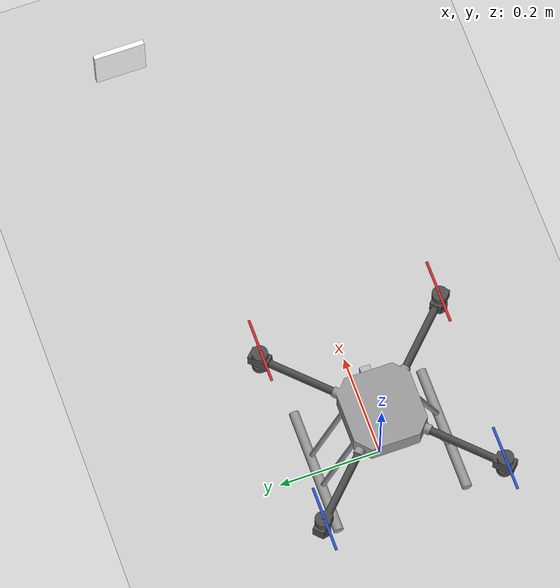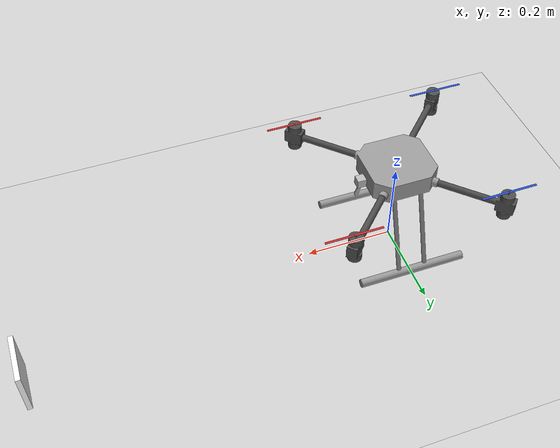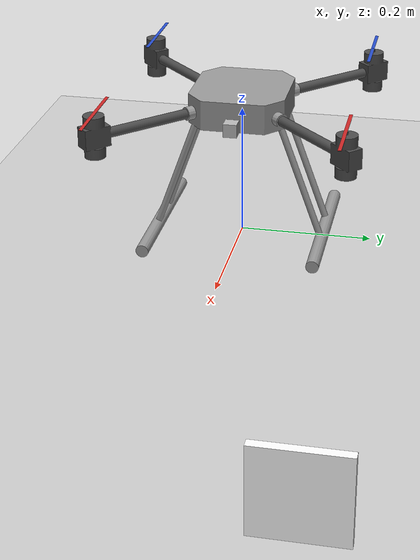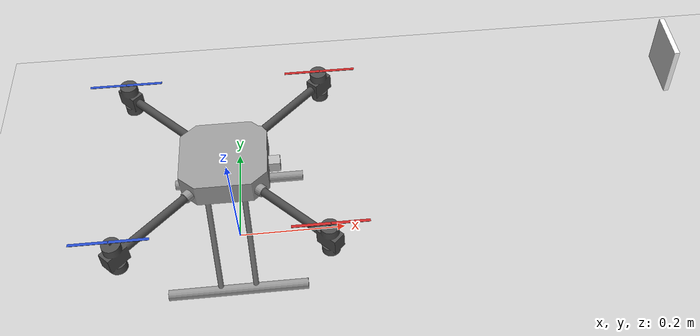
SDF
<sdf version="1.7">
 <world name="default">
  <light name="sun" type="directional">
   <pose>0 0 10 0 -0 0</pose>
   <diffuse>0.8 0.8 0.8 1</diffuse>
   <specular>0.2 0.2 0.2 1</specular>
   <attenuation>
    <range>1000</range>
    <constant>0.9</constant>
    <linear>0.01</linear>
    <quadratic>0.001</quadratic>
   </attenuation>
   <direction>-0.5 0.1 -0.9</direction>
   <spot><inner_angle>0</inner_angle><outer_angle>0</outer_angle><falloff>0</falloff></spot>
  </light>
  <model name="ground_plane">
   <static>1</static>
   <link name="link">
    <collision name="collision">
     <geometry><plane><normal>0 0 1</normal><size>100 100</size></plane></geometry>
     <surface>
      <contact><collide_bitmask>65535</collide_bitmask></contact>
      <friction><ode><mu>100</mu><mu2>50</mu2></ode></friction>
     </surface>
    </collision>
    <visual name="visual">
     <cast_shadows>0</cast_shadows>
     <geometry><plane><normal>0 0 1</normal><size>100 100</size></plane></geometry>
     <material>
      <script><uri>file://media/materials/scripts/gazebo.material</uri><name>Gazebo/Grey</name></script>
     </material>
    </visual>
   </link>
  </model>
  <gravity>0 0 -9.8</gravity>
  <magnetic_field>6e-06 2.3e-05 -4.2e-05</magnetic_field>
  <atmosphere type="adiabatic"/>
  <physics type="ode">
   <max_step_size>0.001</max_step_size>
   <real_time_factor>1</real_time_factor>
   <real_time_update_rate>1000</real_time_update_rate>
  </physics>
  <scene><ambient>0.4 0.4 0.4 1</ambient><background>0.7 0.7 0.7 1</background><shadows>1</shadows></scene>
  <spherical_coordinates>
   <surface_model>EARTH_WGS84</surface_model>
   <latitude_deg>0</latitude_deg>
   <longitude_deg>0</longitude_deg>
   <elevation>0</elevation>
   <heading_deg>0</heading_deg>
  </spherical_coordinates>
  <model name="ndt2">
   <link name="base_link">
    <inertial>
     <pose>0.00017 0 2e-05 0 -0 0</pose>
     <mass>5.01</mass>
     <inertia>
      <ixx>0.153203</ixx>
      <ixy>0</ixy>
      <ixz>-8.48303e-06</ixz>
      <iyy>0.153275</iyy>
      <iyz>0</iyz>
      <izz>0.186082</izz>
     </inertia>
    </inertial>
    <collision name="base_link_inertia_collision">
     <geometry>
      <mesh>
       <scale>1 1 1</scale>
       <uri>/home/simone/uav_ws/src/mav_description/meshes/ndt2/chassis_res.stl</uri>
      </mesh>
     </geometry>
     <surface><contact><ode><min_depth>0.001</min_depth><max_vel>0</max_vel></ode></contact></surface>
    </collision>
    <visual name="base_link_inertia_visual">
     <geometry>
      <mesh>
       <scale>1 1 1</scale>
       <uri>/home/simone/uav_ws/src/mav_description/meshes/ndt2/chassis_res.stl</uri>
      </mesh>
     </geometry>
     <material>
      <script><name>Gazebo/Gray</name><uri>file://media/materials/scripts/gazebo.material</uri></script>
     </material>
    </visual>
    <visual name="base_link_fixed_joint_lump__camera_link_visual_1">
     <pose>0.085 0 0.01 0 -0 0</pose>
     <geometry><box><size>0.02 0.02 0.02</size></box></geometry>
    </visual>
    <self_collide>1</self_collide>
    <sensor name="camera1" type="camera">
     <update_rate>30</update_rate>
     <camera name="head">
      <horizontal_fov>1.39626</horizontal_fov>
      <image><width>800</width><height>600</height><format>R8G8B8</format></image>
      <clip><near>0.02</near><far>300</far></clip>
      <noise><type>gaussian</type><mean>0</mean><stddev>0.007</stddev></noise>
     </camera>
     <plugin name="camera_controller" filename="libgazebo_ros_camera.so">
      <alwaysOn>1</alwaysOn>
      <updateRate>0.0</updateRate>
      <cameraName>/camera</cameraName>
      <imageTopicName>image_raw</imageTopicName>
      <cameraInfoTopicName>camera_info</cameraInfoTopicName>
      <frameName>camera_link</frameName>
      <hackBaseline>0.07</hackBaseline>
      <distortionK1>0.0</distortionK1>
      <distortionK2>0.0</distortionK2>
      <distortionK3>0.0</distortionK3>
      <distortionT1>0.0</distortionT1>
      <distortionT2>0.0</distortionT2>
      <robotNamespace>/</robotNamespace>
     </plugin>
     <pose>0.085 0 0.01 0 -0 0</pose>
    </sensor>
   </link>
   <joint name="tilt_motor_1" type="revolute">
    <pose relative_to="base_link">0 0 0.02 0 -0 3.1415</pose>
    <parent>base_link</parent>
    <child>arm_1</child>
    <axis>
     <xyz>-0.707107 -0.707107 0</xyz>
     <limit><lower>-1.57</lower><upper>1.57</upper><effort>30</effort><velocity>1</velocity></limit>
     <dynamics><spring_reference>0</spring_reference><spring_stiffness>0</spring_stiffness></dynamics>
    </axis>
   </joint>
   <link name="arm_1">
    <pose relative_to="tilt_motor_1">0 0 0 0 -0 0</pose>
    <inertial>
     <pose>0.083 0.083 0 0 -0 0</pose>
     <mass>0.1</mass>
     <inertia>
      <ixx>0.000993333</ixx>
      <ixy>0</ixy>
      <ixz>0</ixz>
      <iyy>0.000993333</iyy>
      <iyz>0</iyz>
      <izz>0.00192667</izz>
     </inertia>
    </inertial>
    <collision name="arm_1_collision">
     <pose>0 0 -0.02 0 -0 3.1415</pose>
     <geometry>
      <mesh><scale>1 1 1</scale><uri>/home/simone/uav_ws/src/mav_description/meshes/ndt2/arm_1.stl</uri></mesh>
     </geometry>
     <surface><friction><ode><mu>0.2</mu><mu2>0.2</mu2></ode></friction></surface>
    </collision>
    <visual name="arm_1_visual">
     <pose>0 0 -0.02 0 -0 3.1415</pose>
     <geometry>
      <mesh><scale>1 1 1</scale><uri>/home/simone/uav_ws/src/mav_description/meshes/ndt2/arm_1.stl</uri></mesh>
     </geometry>
     <material>
      <script><name>DarkGrey</name><uri>file://media/materials/scripts/gazebo.material</uri></script>
     </material>
    </visual>
    <self_collide>1</self_collide>
   </link>
   <joint name="rotor_2_joint" type="revolute">
    <pose relative_to="arm_1">-0.175 -0.175 0.035 0 -0 0</pose>
    <parent>arm_1</parent>
    <child>rotor_2</child>
    <axis>
     <xyz>0 0 1</xyz>
     <limit><lower>-1e+16</lower><upper>1e+16</upper></limit>
     <dynamics><spring_reference>0</spring_reference><spring_stiffness>0</spring_stiffness></dynamics>
    </axis>
   </joint>
   <link name="rotor_2">
    <pose relative_to="rotor_2_joint">0 0 0 0 -0 0</pose>
    <inertial>
     <mass>0.001</mass>
     <inertia>
      <ixx>1.95e-06</ixx>
      <ixy>0</ixy>
      <ixz>0</ixz>
      <iyy>0.000546208</iyy>
      <iyz>0</iyz>
      <izz>0.000548008</izz>
     </inertia>
    </inertial>
    <collision name="rotor_2_collision">
     <geometry><cylinder><length>0.005</length><radius>0.128</radius></cylinder></geometry>
    </collision>
    <visual name="rotor_2_visual">
     <geometry>
      <mesh>
       <scale>1 1 1</scale>
       <uri>/home/simone/uav_ws/src/mav_description/meshes/ndt2/prop.stl_cw.dae</uri>
      </mesh>
     </geometry>
     <material>
      <script><name>Gazebo/Red</name><uri>file://media/materials/scripts/gazebo.material</uri></script>
     </material>
    </visual>
   </link>
   <joint name="tilt_motor_2" type="revolute">
    <pose relative_to="base_link">0 0 0.02 0 -0 0</pose>
    <parent>base_link</parent>
    <child>arm_2</child>
    <axis>
     <xyz>-0.707107 0.707107 0</xyz>
     <limit><lower>-1.57</lower><upper>1.57</upper><effort>30</effort><velocity>1</velocity></limit>
     <dynamics><spring_reference>0</spring_reference><spring_stiffness>0</spring_stiffness></dynamics>
    </axis>
   </joint>
   <link name="arm_2">
    <pose relative_to="tilt_motor_2">0 0 0 0 -0 0</pose>
    <inertial>
     <pose>-0.083 0.083 0 0 -0 0</pose>
     <mass>0.1</mass>
     <inertia>
      <ixx>0.000993333</ixx>
      <ixy>0</ixy>
      <ixz>0</ixz>
      <iyy>0.000993333</iyy>
      <iyz>0</iyz>
      <izz>0.00192667</izz>
     </inertia>
    </inertial>
    <collision name="arm_2_collision">
     <pose>0 0 -0.02 0 -0 0</pose>
     <geometry>
      <mesh><scale>1 1 1</scale><uri>/home/simone/uav_ws/src/mav_description/meshes/ndt2/arm_2.stl</uri></mesh>
     </geometry>
     <surface><friction><ode><mu>0.2</mu><mu2>0.2</mu2></ode></friction></surface>
    </collision>
    <visual name="arm_2_visual">
     <pose>0 0 -0.02 0 -0 0</pose>
     <geometry>
      <mesh><scale>1 1 1</scale><uri>/home/simone/uav_ws/src/mav_description/meshes/ndt2/arm_2.stl</uri></mesh>
     </geometry>
     <material>
      <script><name>DarkGrey</name><uri>file://media/materials/scripts/gazebo.material</uri></script>
     </material>
    </visual>
    <self_collide>1</self_collide>
   </link>
   <joint name="rotor_1_joint" type="revolute">
    <pose relative_to="arm_2">-0.175 0.175 0.035 0 -0 0</pose>
    <parent>arm_2</parent>
    <child>rotor_1</child>
    <axis>
     <xyz>0 0 1</xyz>
     <limit><lower>-1e+16</lower><upper>1e+16</upper></limit>
     <dynamics><spring_reference>0</spring_reference><spring_stiffness>0</spring_stiffness></dynamics>
    </axis>
   </joint>
   <link name="rotor_1">
    <pose relative_to="rotor_1_joint">0 0 0 0 -0 0</pose>
    <inertial>
     <mass>0.001</mass>
     <inertia>
      <ixx>1.95e-06</ixx>
      <ixy>0</ixy>
      <ixz>0</ixz>
      <iyy>0.000546208</iyy>
      <iyz>0</iyz>
      <izz>0.000548008</izz>
     </inertia>
    </inertial>
    <collision name="rotor_1_collision">
     <geometry><cylinder><length>0.005</length><radius>0.128</radius></cylinder></geometry>
    </collision>
    <visual name="rotor_1_visual">
     <geometry>
      <mesh>
       <scale>1 1 1</scale>
       <uri>/home/simone/uav_ws/src/mav_description/meshes/ndt2/prop.stl_ccw.dae</uri>
      </mesh>
     </geometry>
     <material>
      <script><name>Gazebo/Blue</name><uri>file://media/materials/scripts/gazebo.material</uri></script>
     </material>
    </visual>
   </link>
   <joint name="tilt_motor_3" type="revolute">
    <pose relative_to="base_link">0 0 0.02 0 -0 3.1415</pose>
    <parent>base_link</parent>
    <child>arm_3</child>
    <axis>
     <xyz>0.707107 0.707107 0</xyz>
     <limit><lower>-1.57</lower><upper>1.57</upper><effort>30</effort><velocity>1</velocity></limit>
     <dynamics><spring_reference>0</spring_reference><spring_stiffness>0</spring_stiffness></dynamics>
    </axis>
   </joint>
   <link name="arm_3">
    <pose relative_to="tilt_motor_3">0 0 0 0 -0 0</pose>
    <inertial>
     <pose>-0.083 -0.083 0 0 -0 0</pose>
     <mass>0.1</mass>
     <inertia>
      <ixx>0.000993333</ixx>
      <ixy>0</ixy>
      <ixz>0</ixz>
      <iyy>0.000993333</iyy>
      <iyz>0</iyz>
      <izz>0.00192667</izz>
     </inertia>
    </inertial>
    <collision name="arm_3_collision">
     <pose>0 0 -0.02 0 -0 3.1415</pose>
     <geometry>
      <mesh><scale>1 1 1</scale><uri>/home/simone/uav_ws/src/mav_description/meshes/ndt2/arm_3.stl</uri></mesh>
     </geometry>
     <surface><friction><ode><mu>0.2</mu><mu2>0.2</mu2></ode></friction></surface>
    </collision>
    <visual name="arm_3_visual">
     <pose>0 0 -0.02 0 -0 3.1415</pose>
     <geometry>
      <mesh><scale>1 1 1</scale><uri>/home/simone/uav_ws/src/mav_description/meshes/ndt2/arm_3.stl</uri></mesh>
     </geometry>
     <material>
      <script><name>DarkGrey</name><uri>file://media/materials/scripts/gazebo.material</uri></script>
     </material>
    </visual>
    <self_collide>1</self_collide>
   </link>
   <joint name="rotor_3_joint" type="revolute">
    <pose relative_to="arm_3">0.175 0.175 0.035 0 -0 0</pose>
    <parent>arm_3</parent>
    <child>rotor_3</child>
    <axis>
     <xyz>0 0 1</xyz>
     <limit><lower>-1e+16</lower><upper>1e+16</upper></limit>
     <dynamics><spring_reference>0</spring_reference><spring_stiffness>0</spring_stiffness></dynamics>
    </axis>
   </joint>
   <link name="rotor_3">
    <pose relative_to="rotor_3_joint">0 0 0 0 -0 0</pose>
    <inertial>
     <mass>0.001</mass>
     <inertia>
      <ixx>1.95e-06</ixx>
      <ixy>0</ixy>
      <ixz>0</ixz>
      <iyy>0.000546208</iyy>
      <iyz>0</iyz>
      <izz>0.000548008</izz>
     </inertia>
    </inertial>
    <collision name="rotor_3_collision">
     <geometry><cylinder><length>0.005</length><radius>0.128</radius></cylinder></geometry>
    </collision>
    <visual name="rotor_3_visual">
     <geometry>
      <mesh>
       <scale>1 1 1</scale>
       <uri>/home/simone/uav_ws/src/mav_description/meshes/ndt2/prop.stl_cw.dae</uri>
      </mesh>
     </geometry>
     <material>
      <script><name>Gazebo/Blue</name><uri>file://media/materials/scripts/gazebo.material</uri></script>
     </material>
    </visual>
   </link>
   <joint name="tilt_motor_4" type="revolute">
    <pose relative_to="base_link">0 0 0.02 0 -0 3.1415</pose>
    <parent>base_link</parent>
    <child>arm_4</child>
    <axis>
     <xyz>-0.707107 0.707107 0</xyz>
     <limit><lower>-1.57</lower><upper>1.57</upper><effort>30</effort><velocity>1</velocity></limit>
     <dynamics><spring_reference>0</spring_reference><spring_stiffness>0</spring_stiffness></dynamics>
    </axis>
   </joint>
   <link name="arm_4">
    <pose relative_to="tilt_motor_4">0 0 0 0 -0 0</pose>
    <inertial>
     <pose>0.083 -0.083 0 0 -0 0</pose>
     <mass>0.1</mass>
     <inertia>
      <ixx>0.000993333</ixx>
      <ixy>0</ixy>
      <ixz>0</ixz>
      <iyy>0.000993333</iyy>
      <iyz>0</iyz>
      <izz>0.00192667</izz>
     </inertia>
    </inertial>
    <collision name="arm_4_collision">
     <pose>0 0 -0.02 0 -0 3.1415</pose>
     <geometry>
      <mesh><scale>1 1 1</scale><uri>/home/simone/uav_ws/src/mav_description/meshes/ndt2/arm_4.stl</uri></mesh>
     </geometry>
     <surface><friction><ode><mu>0.2</mu><mu2>0.2</mu2></ode></friction></surface>
    </collision>
    <visual name="arm_4_visual">
     <pose>0 0 -0.02 0 -0 3.1415</pose>
     <geometry>
      <mesh><scale>1 1 1</scale><uri>/home/simone/uav_ws/src/mav_description/meshes/ndt2/arm_4.stl</uri></mesh>
     </geometry>
     <material>
      <script><name>DarkGrey</name><uri>file://media/materials/scripts/gazebo.material</uri></script>
     </material>
    </visual>
    <self_collide>1</self_collide>
   </link>
   <joint name="rotor_0_joint" type="revolute">
    <pose relative_to="arm_4">-0.175 0.175 0.035 0 -0 0</pose>
    <parent>arm_4</parent>
    <child>rotor_0</child>
    <axis>
     <xyz>0 0 1</xyz>
     <limit><lower>-1e+16</lower><upper>1e+16</upper></limit>
     <dynamics><spring_reference>0</spring_reference><spring_stiffness>0</spring_stiffness></dynamics>
    </axis>
   </joint>
   <link name="rotor_0">
    <pose relative_to="rotor_0_joint">0 0 0 0 -0 0</pose>
    <inertial>
     <mass>0.001</mass>
     <inertia>
      <ixx>1.95e-06</ixx>
      <ixy>0</ixy>
      <ixz>0</ixz>
      <iyy>0.000546208</iyy>
      <iyz>0</iyz>
      <izz>0.000548008</izz>
     </inertia>
    </inertial>
    <collision name="rotor_0_collision">
     <geometry><cylinder><length>0.005</length><radius>0.128</radius></cylinder></geometry>
    </collision>
    <visual name="rotor_0_visual">
     <geometry>
      <mesh>
       <scale>1 1 1</scale>
       <uri>/home/simone/uav_ws/src/mav_description/meshes/ndt2/prop.stl_ccw.dae</uri>
      </mesh>
     </geometry>
     <material>
      <script><name>Gazebo/Red</name><uri>file://media/materials/scripts/gazebo.material</uri></script>
     </material>
    </visual>
   </link>
   <plugin name="rosbag" filename="librotors_gazebo_multirotor_base_plugin.so">
    <robotNamespace>ndt2</robotNamespace>
    <linkName>base_link</linkName>
    <rotorVelocitySlowdownSim>100</rotorVelocitySlowdownSim>
   </plugin>
   <plugin name="front_right_motor_model" filename="librotors_gazebo_motor_model.so">
    <robotNamespace>ndt2</robotNamespace>
    <jointName>rotor_0_joint</jointName>
    <linkName>rotor_0</linkName>
    <turningDirection>ccw</turningDirection>
    <timeConstantUp>0.0125</timeConstantUp>
    <timeConstantDown>0.025</timeConstantDown>
    <maxRotVelocity>1100</maxRotVelocity>
    <motorConstant>8.54858e-05</motorConstant>
    <momentConstant>0.06</momentConstant>
    <commandSubTopic>/gazebo/command/motor_speed</commandSubTopic>
    <motorNumber>0</motorNumber>
    <rotorDragCoefficient>0.000175</rotorDragCoefficient>
    <rollingMomentCoefficient>1e-06</rollingMomentCoefficient>
    <motorSpeedPubTopic>/motor_speed/0</motorSpeedPubTopic>
    <rotorVelocitySlowdownSim>100</rotorVelocitySlowdownSim>
   </plugin>
   <plugin name="rear_left_motor_model" filename="librotors_gazebo_motor_model.so">
    <robotNamespace>ndt2</robotNamespace>
    <jointName>rotor_1_joint</jointName>
    <linkName>rotor_1</linkName>
    <turningDirection>ccw</turningDirection>
    <timeConstantUp>0.0125</timeConstantUp>
    <timeConstantDown>0.025</timeConstantDown>
    <maxRotVelocity>1100</maxRotVelocity>
    <motorConstant>8.54858e-05</motorConstant>
    <momentConstant>0.06</momentConstant>
    <commandSubTopic>/gazebo/command/motor_speed</commandSubTopic>
    <motorNumber>1</motorNumber>
    <rotorDragCoefficient>0.000175</rotorDragCoefficient>
    <rollingMomentCoefficient>1e-06</rollingMomentCoefficient>
    <motorSpeedPubTopic>/motor_speed/1</motorSpeedPubTopic>
    <rotorVelocitySlowdownSim>100</rotorVelocitySlowdownSim>
   </plugin>
   <plugin name="front_left_motor_model" filename="librotors_gazebo_motor_model.so">
    <robotNamespace>ndt2</robotNamespace>
    <jointName>rotor_2_joint</jointName>
    <linkName>rotor_2</linkName>
    <turningDirection>cw</turningDirection>
    <timeConstantUp>0.0125</timeConstantUp>
    <timeConstantDown>0.025</timeConstantDown>
    <maxRotVelocity>1100</maxRotVelocity>
    <motorConstant>8.54858e-05</motorConstant>
    <momentConstant>0.06</momentConstant>
    <commandSubTopic>/gazebo/command/motor_speed</commandSubTopic>
    <motorNumber>2</motorNumber>
    <rotorDragCoefficient>0.000175</rotorDragCoefficient>
    <rollingMomentCoefficient>1e-06</rollingMomentCoefficient>
    <motorSpeedPubTopic>/motor_speed/2</motorSpeedPubTopic>
    <rotorVelocitySlowdownSim>100</rotorVelocitySlowdownSim>
   </plugin>
   <plugin name="rear_right_motor_model" filename="librotors_gazebo_motor_model.so">
    <robotNamespace>ndt2</robotNamespace>
    <jointName>rotor_3_joint</jointName>
    <linkName>rotor_3</linkName>
    <turningDirection>cw</turningDirection>
    <timeConstantUp>0.0125</timeConstantUp>
    <timeConstantDown>0.025</timeConstantDown>
    <maxRotVelocity>1100</maxRotVelocity>
    <motorConstant>8.54858e-05</motorConstant>
    <momentConstant>0.06</momentConstant>
    <commandSubTopic>/gazebo/command/motor_speed</commandSubTopic>
    <motorNumber>3</motorNumber>
    <rotorDragCoefficient>0.000175</rotorDragCoefficient>
    <rollingMomentCoefficient>1e-06</rollingMomentCoefficient>
    <motorSpeedPubTopic>/motor_speed/3</motorSpeedPubTopic>
    <rotorVelocitySlowdownSim>100</rotorVelocitySlowdownSim>
   </plugin>
   <plugin name="ros_interface" filename="libgazebo_ros_interface.so">
    <robotNamespace>ndt2</robotNamespace>
    <odomFrame>NED</odomFrame>
    <motorSize>4</motorSize>
    <motorSpeedCommandPubTopic>/gazebo/command/motor_speed</motorSpeedCommandPubTopic>
   </plugin>
   <static>0</static>
   <plugin name="gazebo_ros_control" filename="libgazebo_ros_control.so">
    <robotNamespace>/</robotNamespace>
   </plugin>
   <pose>-0.000163 0.000264 0.191139 -0.001202 -4e-06 -0.001133</pose>
  </model>
  <model name="Apriltag36_11_00000_mod">
   <link name="main">
    <inertial>
     <mass>1</mass>
     <inertia><ixx>1</ixx><ixy>0</ixy><ixz>0</ixz><iyy>1</iyy><iyz>0</iyz><izz>1</izz></inertia>
    </inertial>
    <visual name="main_Visual">
     <geometry><box><size>0.1 0.1 0.01</size></box></geometry>
     <material>
      <script>
       <uri>model://Apriltag36_11_00000/materials/scripts</uri>
       <uri>model://Apriltag36_11_00000/materials/textures</uri>
       <name>Apriltag36_11_00000</name>
      </script>
      <shader type="pixel"><normal_map>__default__</normal_map></shader>
      <ambient>1 1 1 1</ambient>
      <diffuse>1 1 1 1</diffuse>
      <specular>0 0 0 1</specular>
      <emissive>0 0 0 1</emissive>
     </material>
    </visual>
   </link>
   <static>1</static>
   <pose>0.856233 0.220099 0.178141 0 1.57 0</pose>
  </model>
 </world>
</sdf>
